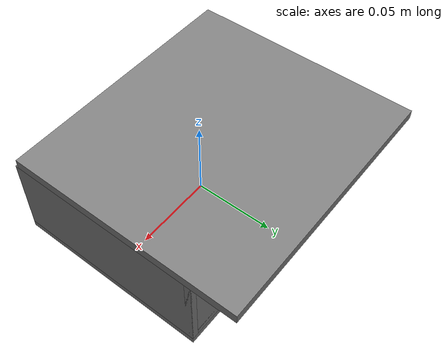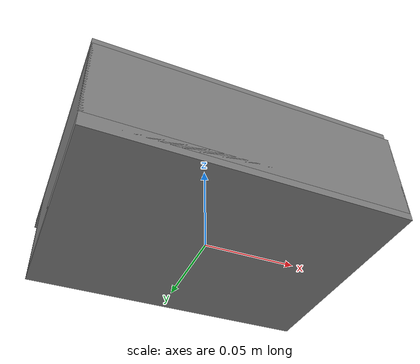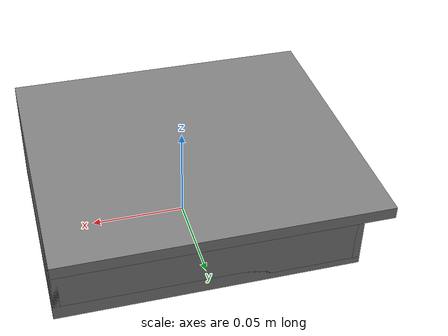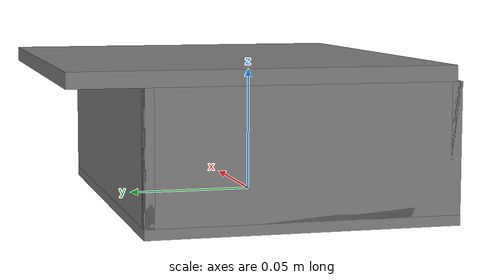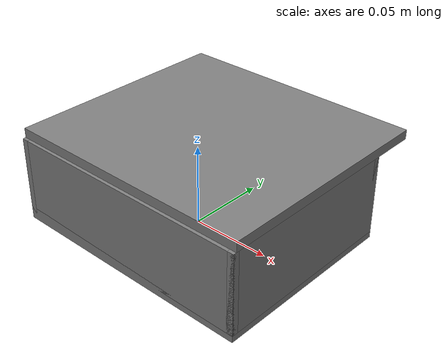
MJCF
<mujoco model="box_folding_hinged">
  <compiler angle="radian"/>
  <worldbody>
    <body name="box_root">
      <geom name="bottom" type="box" pos="0 0 0" size="0.080000 0.060000 0.004000"/>
      <geom name="left_wall" type="box" pos="-0.078000 0 0.025000" size="0.002000 0.060000 0.025000"/>
      <geom name="right_wall" type="box" pos="0.078000 0 0.025000" size="0.002000 0.060000 0.025000"/>
      <geom name="front_wall" type="box" pos="0 0.058000 0.025000" size="0.080000 0.002000 0.025000"/>
      <geom name="back_wall" type="box" pos="0 -0.058000 0.025000" size="0.080000 0.002000 0.025000"/>
      <body name="lid" pos="0 -0.058000 0.053000">
        <joint name="lid_hinge" type="hinge" axis="1 0 0" limited="true" range="0 2.4"/>
        <geom name="lid_panel" type="box" pos="0 0.072500 0" size="0.080000 0.072500 0.003000"/>
      </body>
    </body>
  </worldbody>
</mujoco>
